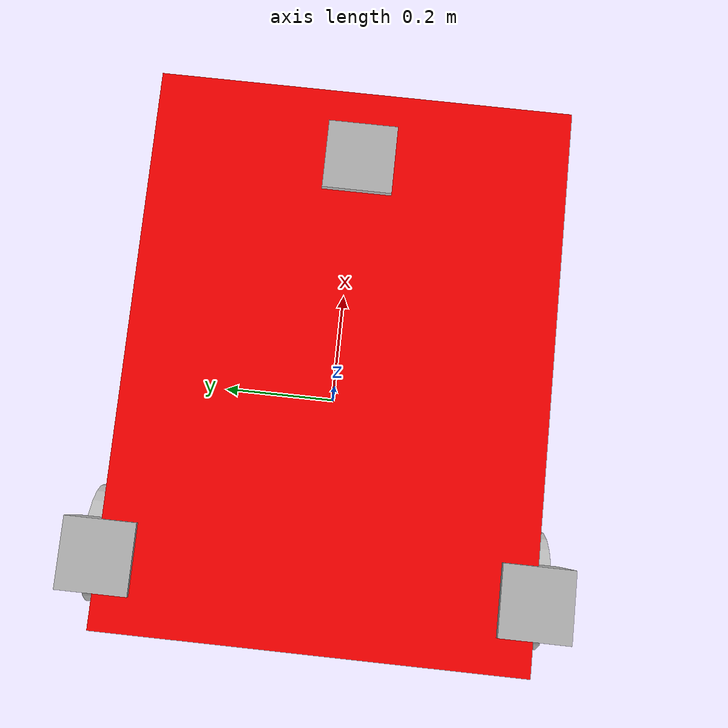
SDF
<sdf version="1.8">
  <model name="red_robot">
    <self_collide>false</self_collide>

    <link name="chassis">
      <pose>0 0 0.4 0 0 0</pose>
      <inertial>
        <mass>15.0</mass>
        <inertia><ixx>0.5</ixx><iyy>1.0</iyy><izz>1.0</izz></inertia>
      </inertial>
      <collision name="chassis_collision">
        <geometry><box><size>0.8 0.6 0.08</size></box></geometry>
      </collision>
      <visual name="visual">
        <geometry><box><size>0.8 0.6 0.08</size></box></geometry>
        <material><ambient>1 0 0 1</ambient><diffuse>1 0 0 1</diffuse></material>
      </visual>
    </link>

    <link name="body_L">
      <pose>-0.3 0.3 0.4 0 0 0</pose>
      <visual name="visual"><geometry><box><size>0.1 0.1 0.1</size></box></geometry></visual>
    </link>

    <link name="axle_L">
      <pose>-0.3 0.3 0.1 1.5708 0 0</pose>
      <inertial><mass>0.5</mass><inertia><ixx>0.001</ixx><iyy>0.001</iyy><izz>0.001</izz></inertia></inertial>
      <visual name="visual"><geometry><cylinder><radius>0.02</radius><length>0.15</length></cylinder></geometry><material><ambient>1 0 0 1</ambient></material></visual>
    </link>

    <link name="tire_L">
      <pose>-0.3 0.35 0.1 1.5708 0 0</pose>
      <collision name="collision"><geometry><cylinder><radius>0.1</radius><length>0.06</length></cylinder></geometry></collision>
      <visual name="visual"><geometry><cylinder><radius>0.1</radius><length>0.06</length></cylinder></geometry></visual>
    </link>

    <link name="body_R">
      <pose>-0.3 -0.3 0.4 0 0 0</pose>
      <visual name="visual"><geometry><box><size>0.1 0.1 0.1</size></box></geometry></visual>
    </link>

    <link name="axle_R">
      <pose>-0.3 -0.3 0.1 1.5708 0 0</pose>
      <inertial><mass>0.5</mass><inertia><ixx>0.001</ixx><iyy>0.001</iyy><izz>0.001</izz></inertia></inertial>
      <visual name="visual"><geometry><cylinder><radius>0.02</radius><length>0.15</length></cylinder></geometry><material><ambient>1 0 0 1</ambient></material></visual>
    </link>

    <link name="tire_R">
      <pose>-0.3 -0.35 0.1 1.5708 0 0</pose>
      <collision name="collision"><geometry><cylinder><radius>0.1</radius><length>0.06</length></cylinder></geometry></collision>
      <visual name="visual"><geometry><cylinder><radius>0.1</radius><length>0.06</length></cylinder></geometry></visual>
    </link>

    <link name="caster_housing">
      <pose>0.3 0 0.4 0 0 0</pose>
      <visual name="visual"><geometry><box><size>0.1 0.1 0.1</size></box></geometry></visual>
    </link>

    <link name="caster_ball">
      <pose>0.3 0 0.1 0 0 0</pose>
      <collision name="collision">
        <geometry><sphere><radius>0.1</radius></sphere></geometry>
        <surface><friction><ode><mu>0</mu><mu2>0</mu2></ode></friction></surface>
      </collision>
      <visual name="visual"><geometry><sphere><radius>0.1</radius></sphere></geometry></visual>
    </link>

    <joint name="ch_to_L" type="fixed"><parent>chassis</parent><child>body_L</child></joint>
    <joint name="ch_to_R" type="fixed"><parent>chassis</parent><child>body_R</child></joint>
    <joint name="ch_to_C" type="fixed"><parent>chassis</parent><child>caster_housing</child></joint>

    <joint name="suspension_L" type="prismatic">
      <parent>body_L</parent><child>axle_L</child>
      <axis>
        <xyz>0 0 1</xyz>
        <limit><lower>-0.2</lower><upper>0.2</upper></limit>
        <dynamics>
          <spring_stiffness>5000.0</spring_stiffness>
          <damping>150.0</damping>
          <spring_reference>0.0</spring_reference>
        </dynamics>
      </axis>
    </joint>

    <joint name="suspension_R" type="prismatic">
      <parent>body_R</parent><child>axle_R</child>
      <axis>
        <xyz>0 0 1</xyz>
        <limit><lower>-0.2</lower><upper>0.2</upper></limit>
        <dynamics>
          <spring_stiffness>5000.0</spring_stiffness>
          <damping>150.0</damping>
          <spring_reference>0.0</spring_reference>
        </dynamics>
      </axis>
    </joint>

    <joint name="suspension_caster" type="fixed"><parent>caster_housing</parent><child>caster_ball</child></joint>

    <joint name="drive_L" type="revolute"><parent>axle_L</parent><child>tire_L</child><axis><xyz>0 1 0</xyz></axis></joint>
    <joint name="drive_R" type="revolute"><parent>axle_R</parent><child>tire_R</child><axis><xyz>0 1 0</xyz></axis></joint>

    <plugin filename="gz-sim-joint-state-publisher-system" name="gz::sim::systems::JointStatePublisher"/>
    <plugin filename="gz-sim-apply-joint-force-system" name="gz::sim::systems::ApplyJointForce"><joint_name>suspension_L</joint_name></plugin>
    <plugin filename="gz-sim-apply-joint-force-system" name="gz::sim::systems::ApplyJointForce"><joint_name>suspension_R</joint_name></plugin>
  </model>
</sdf>
